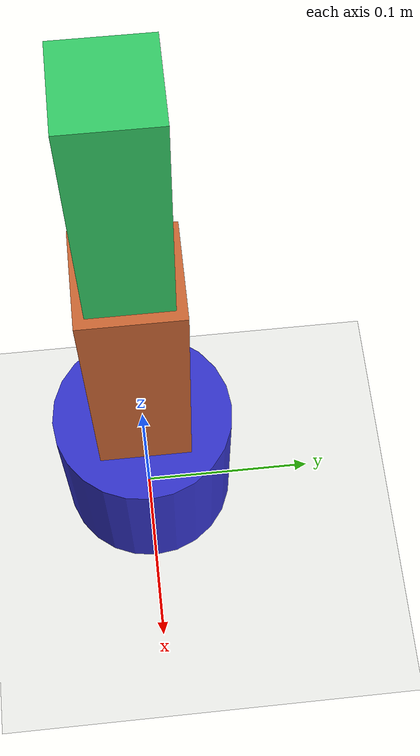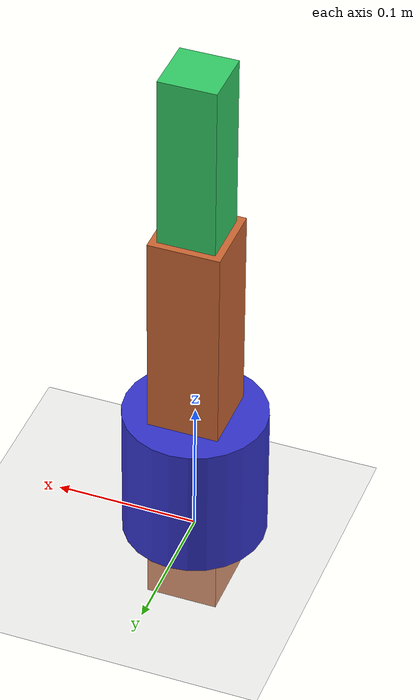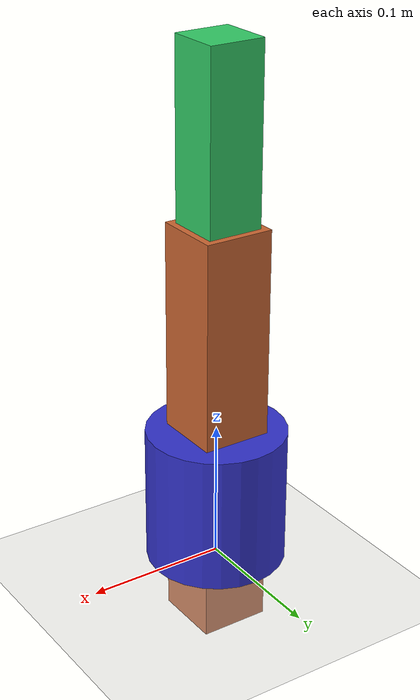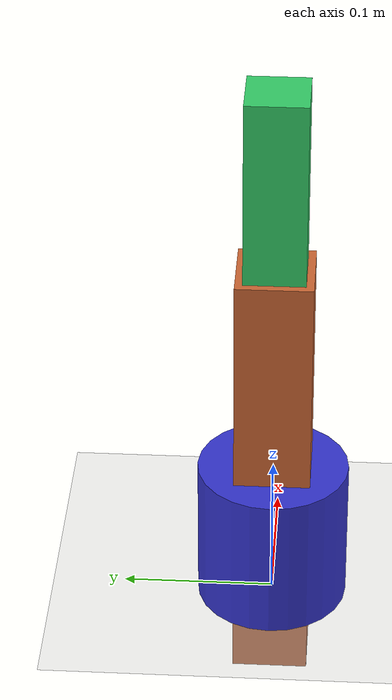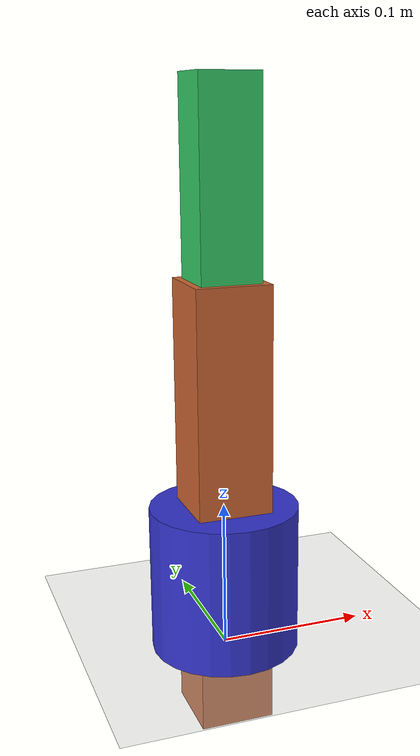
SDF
<sdf version="1.6">
  <world name="default">
    <include>
      <uri>model://sun</uri>
    </include>
    <include>
      <uri>model://ground_plane</uri>
    </include>
    <include>
      <uri>file:///Users/parushi/Documents/Nimbis/ros2_ws/gazebo_models/simple_arm.sdf</uri>
    </include>
  </world>
</sdf>

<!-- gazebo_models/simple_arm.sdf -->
<sdf version="1.7">
  <model name="simple_arm">
    <static>false</static>

    <!-- Base link -->
    <link name="base_link">
      <pose>0 0 0.05 0 0 0</pose>
      <inertial>
        <mass>1.0</mass>
        <inertia>
          <ixx>0.001</ixx>
          <ixy>0.0</ixy>
          <ixz>0.0</ixz>
          <iyy>0.001</iyy>
          <iyz>0.0</iyz>
          <izz>0.001</izz>
        </inertia>
      </inertial>
      <visual name="base_visual">
        <geometry>
          <cylinder>
            <radius>0.05</radius>
            <length>0.1</length>
          </cylinder>
        </geometry>
        <material>
          <ambient>0.2 0.2 0.8 1</ambient>
          <diffuse>0.2 0.2 0.8 1</diffuse>
        </material>
      </visual>
      <collision name="base_collision">
        <geometry>
          <cylinder>
            <radius>0.05</radius>
            <length>0.1</length>
          </cylinder>
        </geometry>
      </collision>
    </link>

    <!-- Shoulder link -->
    <link name="link1">
      <pose>0 0 0.1 0 0 0</pose>
      <inertial>
        <mass>0.5</mass>
        <inertia>
          <ixx>0.001</ixx>
          <ixy>0.0</ixy>
          <ixz>0.0</ixz>
          <iyy>0.001</iyy>
          <iyz>0.0</iyz>
          <izz>0.001</izz>
        </inertia>
      </inertial>
      <visual name="link1_visual">
        <geometry>
          <box>
            <size>0.05 0.05 0.3</size>
          </box>
        </geometry>
        <material>
          <ambient>0.8 0.4 0.2 1</ambient>
          <diffuse>0.8 0.4 0.2 1</diffuse>
        </material>
      </visual>
      <collision name="link1_collision">
        <geometry>
          <box>
            <size>0.05 0.05 0.3</size>
          </box>
        </geometry>
      </collision>
    </link>

    <!-- Elbow link -->
    <link name="link2">
      <pose>0 0 0.25 0 0 0</pose>
      <inertial>
        <mass>0.3</mass>
        <inertia>
          <ixx>0.0005</ixx>
          <ixy>0.0</ixy>
          <ixz>0.0</ixz>
          <iyy>0.0005</iyy>
          <iyz>0.0</iyz>
          <izz>0.0005</izz>
        </inertia>
      </inertial>
      <visual name="link2_visual">
        <geometry>
          <box>
            <size>0.04 0.04 0.25</size>
          </box>
        </geometry>
        <material>
          <ambient>0.2 0.8 0.4 1</ambient>
          <diffuse>0.2 0.8 0.4 1</diffuse>
        </material>
      </visual>
      <collision name="link2_collision">
        <geometry>
          <box>
            <size>0.04 0.04 0.25</size>
          </box>
        </geometry>
      </collision>
    </link>

    <!-- Shoulder joint -->
    <joint name="joint1" type="revolute">
      <parent>base_link</parent>
      <child>link1</child>
      <pose>0 0 0.05 0 0 0</pose>
      <axis>
        <xyz>0 0 1</xyz>
        <limit>
          <lower>-1.57</lower>
          <upper>1.57</upper>
        </limit>
      </axis>
    </joint>

    <!-- Elbow joint -->
    <joint name="joint2" type="revolute">
      <parent>link1</parent>
      <child>link2</child>
      <pose>0 0 0.3 0 0 0</pose>
      <axis>
        <xyz>0 1 0</xyz>
        <limit>
          <lower>-1.57</lower>
          <upper>1.57</upper>
        </limit>
      </axis>
    </joint>
  </model>
</sdf>
